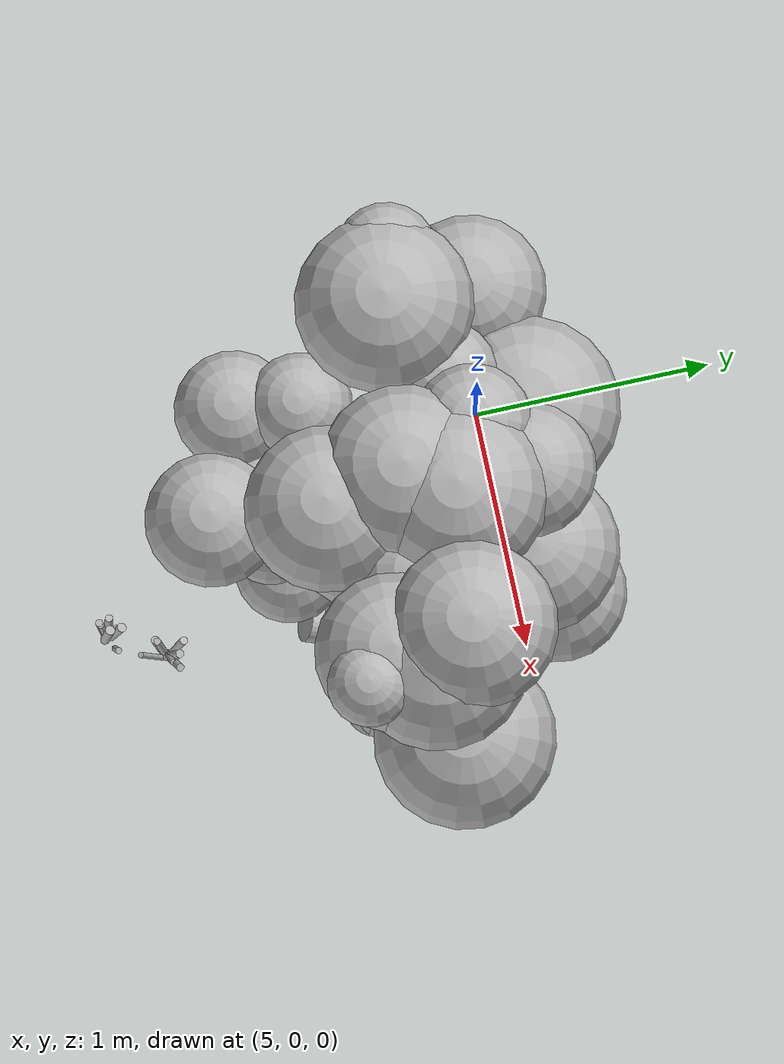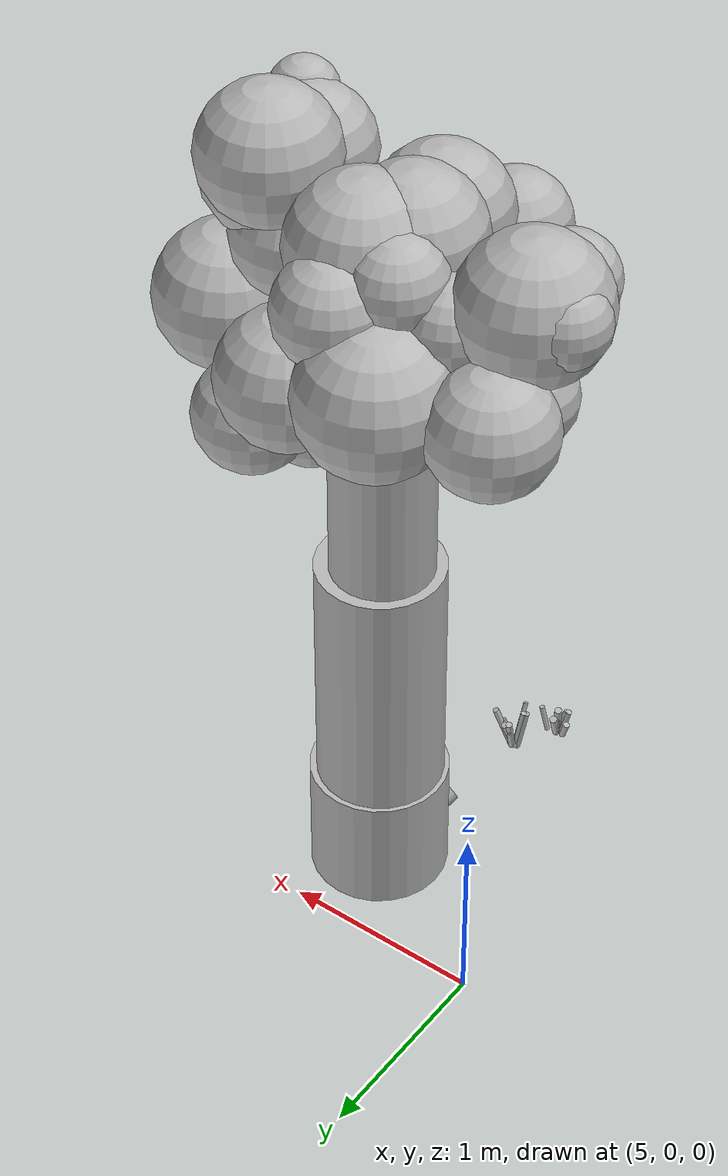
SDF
<sdf version="1.6">
 <world name="default">
  <model name="tree_0">
   <static>true</static>
   <pose>5.8540 -0.4740 0 0 0 0</pose>
   <link name="trunk">
    <pose>0 0 1.5000 0 0 0</pose>
    <collision name="trunk_c">
     <geometry><cylinder><radius>0.3500</radius><length>3.0000</length></cylinder></geometry>
    </collision>
   </link>
   <link name="trunk_v0">
    <pose>-0.0012 0.0004 0.3100 0 0 0</pose>
    <visual name="trunk_v0_v">
     <geometry><cylinder><radius>0.3448</radius><length>0.6448</length></cylinder></geometry>
     <material>
      <script>
       <uri>model://bushfire/materials/scripts</uri>
       <uri>model://bushfire/materials/textures</uri>
       <name>Bushfire/CharBark</name>
      </script>
     </material>
    </visual>
   </link>
   <link name="trunk_v1">
    <pose>-0.0084 0.0025 1.2700 0 0 0</pose>
    <visual name="trunk_v1_v">
     <geometry><cylinder><radius>0.3150</radius><length>1.3520</length></cylinder></geometry>
     <material>
      <script>
       <uri>model://bushfire/materials/scripts</uri>
       <uri>model://bushfire/materials/textures</uri>
       <name>Bushfire/BarkStringy</name>
      </script>
     </material>
    </visual>
   </link>
   <link name="trunk_v2">
    <pose>-0.0212 0.0064 2.4600 0 0 0</pose>
    <visual name="trunk_v2_v">
     <geometry><cylinder><radius>0.2520</radius><length>1.1232</length></cylinder></geometry>
     <material>
      <script>
       <uri>model://bushfire/materials/scripts</uri>
       <uri>model://bushfire/materials/textures</uri>
       <name>Bushfire/BarkStringy</name>
      </script>
     </material>
    </visual>
   </link>
   <link name="root0">
    <pose>0.1943 -0.1408 0.09 0 1.150 5.656</pose>
    <visual name="root0_v">
     <geometry><cylinder><radius>0.0771</radius><length>0.4200</length></cylinder></geometry>
     <material>
      <script>
       <uri>model://bushfire/materials/scripts</uri>
       <uri>model://bushfire/materials/textures</uri>
       <name>Bushfire/CharBark</name>
      </script>
     </material>
    </visual>
   </link>
   <link name="root1">
    <pose>-0.0689 -0.2299 0.09 0 1.150 4.421</pose>
    <visual name="root1_v">
     <geometry><cylinder><radius>0.0788</radius><length>0.4200</length></cylinder></geometry>
     <material>
      <script>
       <uri>model://bushfire/materials/scripts</uri>
       <uri>model://bushfire/materials/textures</uri>
       <name>Bushfire/CharBark</name>
      </script>
     </material>
    </visual>
   </link>
   <link name="root2">
    <pose>0.2066 -0.1222 0.09 0 1.150 5.749</pose>
    <visual name="root2_v">
     <geometry><cylinder><radius>0.0656</radius><length>0.4200</length></cylinder></geometry>
     <material>
      <script>
       <uri>model://bushfire/materials/scripts</uri>
       <uri>model://bushfire/materials/textures</uri>
       <name>Bushfire/CharBark</name>
      </script>
     </material>
    </visual>
   </link>
   <link name="branch0">
    <pose>-0.3504 0.1751 3.0342 0 1.0057 2.6781</pose>
    <visual name="branch0_v">
     <geometry><cylinder><radius>0.0425</radius><length>0.9277</length></cylinder></geometry>
     <material>
      <script>
       <uri>model://bushfire/materials/scripts</uri>
       <uri>model://bushfire/materials/textures</uri>
       <name>Bushfire/BarkStringy</name>
      </script>
     </material>
    </visual>
   </link>
   <link name="branch1">
    <pose>-0.2556 -0.1531 2.8833 0 1.0146 3.6811</pose>
    <visual name="branch1_v">
     <geometry><cylinder><radius>0.0318</radius><length>0.7017</length></cylinder></geometry>
     <material>
      <script>
       <uri>model://bushfire/materials/scripts</uri>
       <uri>model://bushfire/materials/textures</uri>
       <name>Bushfire/BarkStringy</name>
      </script>
     </material>
    </visual>
   </link>
   <link name="branch2">
    <pose>0.0164 -0.2365 2.6765 0 0.8127 4.7815</pose>
    <visual name="branch2_v">
     <geometry><cylinder><radius>0.0383</radius><length>0.6529</length></cylinder></geometry>
     <material>
      <script>
       <uri>model://bushfire/materials/scripts</uri>
       <uri>model://bushfire/materials/textures</uri>
       <name>Bushfire/BarkStringy</name>
      </script>
     </material>
    </visual>
   </link>
   <link name="branch3">
    <pose>0.2578 0.0353 2.9705 0 0.7895 6.4193</pose>
    <visual name="branch3_v">
     <geometry><cylinder><radius>0.0435</radius><length>0.7331</length></cylinder></geometry>
     <material>
      <script>
       <uri>model://bushfire/materials/scripts</uri>
       <uri>model://bushfire/materials/textures</uri>
       <name>Bushfire/BarkStringy</name>
      </script>
     </material>
    </visual>
   </link>
   <link name="branch4">
    <pose>0.1753 0.2175 2.8201 0 0.9769 7.1756</pose>
    <visual name="branch4_v">
     <geometry><cylinder><radius>0.0306</radius><length>0.6741</length></cylinder></geometry>
     <material>
      <script>
       <uri>model://bushfire/materials/scripts</uri>
       <uri>model://bushfire/materials/textures</uri>
       <name>Bushfire/BarkStringy</name>
      </script>
     </material>
    </visual>
   </link>
   <link name="branch5">
    <pose>-0.1718 0.2142 2.7830 0 0.6907 8.5299</pose>
    <visual name="branch5_v">
     <geometry><cylinder><radius>0.0422</radius><length>0.8620</length></cylinder></geometry>
     <material>
      <script>
       <uri>model://bushfire/materials/scripts</uri>
       <uri>model://bushfire/materials/textures</uri>
       <name>Bushfire/BarkStringy</name>
      </script>
     </material>
    </visual>
   </link>
   <link name="foliage0">
    <pose>-0.8416 0.0949 3.8422 0 0 0</pose>
    <visual name="foliage0_v">
     <geometry><sphere><radius>0.3443</radius></sphere></geometry>
     <material>
      <script>
       <uri>model://bushfire/materials/scripts</uri>
       <uri>model://bushfire/materials/textures</uri>
       <name>Bushfire/Foliage1</name>
      </script>
     </material>
    </visual>
   </link>
   <link name="foliage1">
    <pose>-0.5636 -0.2970 3.6007 0 0 0</pose>
    <visual name="foliage1_v">
     <geometry><sphere><radius>0.2027</radius></sphere></geometry>
     <material>
      <script>
       <uri>model://bushfire/materials/scripts</uri>
       <uri>model://bushfire/materials/textures</uri>
       <name>Bushfire/Foliage0</name>
      </script>
     </material>
    </visual>
   </link>
   <link name="foliage2">
    <pose>-0.0430 -0.4567 2.9053 0 0 0</pose>
    <visual name="foliage2_v">
     <geometry><sphere><radius>0.2169</radius></sphere></geometry>
     <material>
      <script>
       <uri>model://bushfire/materials/scripts</uri>
       <uri>model://bushfire/materials/textures</uri>
       <name>Bushfire/Foliage1</name>
      </script>
     </material>
    </visual>
   </link>
   <link name="foliage3">
    <pose>0.5952 -0.2678 4.1278 0 0 0</pose>
    <visual name="foliage3_v">
     <geometry><sphere><radius>0.1624</radius></sphere></geometry>
     <material>
      <script>
       <uri>model://bushfire/materials/scripts</uri>
       <uri>model://bushfire/materials/textures</uri>
       <name>Bushfire/Foliage0</name>
      </script>
     </material>
    </visual>
   </link>
   <link name="foliage4">
    <pose>0.1309 0.4761 3.2742 0 0 0</pose>
    <visual name="foliage4_v">
     <geometry><sphere><radius>0.3281</radius></sphere></geometry>
     <material>
      <script>
       <uri>model://bushfire/materials/scripts</uri>
       <uri>model://bushfire/materials/textures</uri>
       <name>Bushfire/Foliage2</name>
      </script>
     </material>
    </visual>
   </link>
   <link name="foliage5">
    <pose>-0.3848 0.5540 3.4548 0 0 0</pose>
    <visual name="foliage5_v">
     <geometry><sphere><radius>0.3608</radius></sphere></geometry>
     <material>
      <script>
       <uri>model://bushfire/materials/scripts</uri>
       <uri>model://bushfire/materials/textures</uri>
       <name>Bushfire/Foliage0</name>
      </script>
     </material>
    </visual>
   </link>
   <link name="foliage6">
    <pose>-0.8804 0.4378 3.4405 0 0 0</pose>
    <visual name="foliage6_v">
     <geometry><sphere><radius>0.2951</radius></sphere></geometry>
     <material>
      <script>
       <uri>model://bushfire/materials/scripts</uri>
       <uri>model://bushfire/materials/textures</uri>
       <name>Bushfire/Foliage1</name>
      </script>
     </material>
    </visual>
   </link>
   <link name="foliage7">
    <pose>-0.1069 -0.5097 3.4106 0 0 0</pose>
    <visual name="foliage7_v">
     <geometry><sphere><radius>0.1779</radius></sphere></geometry>
     <material>
      <script>
       <uri>model://bushfire/materials/scripts</uri>
       <uri>model://bushfire/materials/textures</uri>
       <name>Bushfire/Foliage0</name>
      </script>
     </material>
    </visual>
   </link>
   <link name="foliage8">
    <pose>-0.1264 -0.2784 3.8040 0 0 0</pose>
    <visual name="foliage8_v">
     <geometry><sphere><radius>0.3207</radius></sphere></geometry>
     <material>
      <script>
       <uri>model://bushfire/materials/scripts</uri>
       <uri>model://bushfire/materials/textures</uri>
       <name>Bushfire/Foliage0</name>
      </script>
     </material>
    </visual>
   </link>
   <link name="foliage9">
    <pose>0.4567 0.1559 4.1046 0 0 0</pose>
    <visual name="foliage9_v">
     <geometry><sphere><radius>0.3230</radius></sphere></geometry>
     <material>
      <script>
       <uri>model://bushfire/materials/scripts</uri>
       <uri>model://bushfire/materials/textures</uri>
       <name>Bushfire/Foliage2</name>
      </script>
     </material>
    </visual>
   </link>
   <link name="foliage10">
    <pose>0.3962 0.0524 3.6691 0 0 0</pose>
    <visual name="foliage10_v">
     <geometry><sphere><radius>0.3029</radius></sphere></geometry>
     <material>
      <script>
       <uri>model://bushfire/materials/scripts</uri>
       <uri>model://bushfire/materials/textures</uri>
       <name>Bushfire/Foliage2</name>
      </script>
     </material>
    </visual>
   </link>
   <link name="foliage11">
    <pose>-0.5422 0.2493 3.7143 0 0 0</pose>
    <visual name="foliage11_v">
     <geometry><sphere><radius>0.2233</radius></sphere></geometry>
     <material>
      <script>
       <uri>model://bushfire/materials/scripts</uri>
       <uri>model://bushfire/materials/textures</uri>
       <name>Bushfire/Foliage2</name>
      </script>
     </material>
    </visual>
   </link>
   <link name="foliage12">
    <pose>-0.1950 0.0346 3.8844 0 0 0</pose>
    <visual name="foliage12_v">
     <geometry><sphere><radius>0.3320</radius></sphere></geometry>
     <material>
      <script>
       <uri>model://bushfire/materials/scripts</uri>
       <uri>model://bushfire/materials/textures</uri>
       <name>Bushfire/Foliage0</name>
      </script>
     </material>
    </visual>
   </link>
   <link name="foliage13">
    <pose>0.0861 0.0266 3.4092 0 0 0</pose>
    <visual name="foliage13_v">
     <geometry><sphere><radius>0.1766</radius></sphere></geometry>
     <material>
      <script>
       <uri>model://bushfire/materials/scripts</uri>
       <uri>model://bushfire/materials/textures</uri>
       <name>Bushfire/Foliage2</name>
      </script>
     </material>
    </visual>
   </link>
   <link name="foliage14">
    <pose>-0.2997 -0.4820 3.2937 0 0 0</pose>
    <visual name="foliage14_v">
     <geometry><sphere><radius>0.2896</radius></sphere></geometry>
     <material>
      <script>
       <uri>model://bushfire/materials/scripts</uri>
       <uri>model://bushfire/materials/textures</uri>
       <name>Bushfire/Foliage1</name>
      </script>
     </material>
    </visual>
   </link>
   <link name="foliage15">
    <pose>0.4788 -0.1492 3.9561 0 0 0</pose>
    <visual name="foliage15_v">
     <geometry><sphere><radius>0.3046</radius></sphere></geometry>
     <material>
      <script>
       <uri>model://bushfire/materials/scripts</uri>
       <uri>model://bushfire/materials/textures</uri>
       <name>Bushfire/Foliage2</name>
      </script>
     </material>
    </visual>
   </link>
   <link name="foliage16">
    <pose>0.1376 0.3131 2.9619 0 0 0</pose>
    <visual name="foliage16_v">
     <geometry><sphere><radius>0.2329</radius></sphere></geometry>
     <material>
      <script>
       <uri>model://bushfire/materials/scripts</uri>
       <uri>model://bushfire/materials/textures</uri>
       <name>Bushfire/Foliage1</name>
      </script>
     </material>
    </visual>
   </link>
   <link name="foliage17">
    <pose>-0.0742 0.2170 3.8823 0 0 0</pose>
    <visual name="foliage17_v">
     <geometry><sphere><radius>0.3452</radius></sphere></geometry>
     <material>
      <script>
       <uri>model://bushfire/materials/scripts</uri>
       <uri>model://bushfire/materials/textures</uri>
       <name>Bushfire/Foliage1</name>
      </script>
     </material>
    </visual>
   </link>
   <link name="foliage18">
    <pose>-0.8502 0.1602 3.4344 0 0 0</pose>
    <visual name="foliage18_v">
     <geometry><sphere><radius>0.2396</radius></sphere></geometry>
     <material>
      <script>
       <uri>model://bushfire/materials/scripts</uri>
       <uri>model://bushfire/materials/textures</uri>
       <name>Bushfire/Foliage0</name>
      </script>
     </material>
    </visual>
   </link>
   <link name="foliage19">
    <pose>-0.0155 -0.2072 3.4936 0 0 0</pose>
    <visual name="foliage19_v">
     <geometry><sphere><radius>0.1561</radius></sphere></geometry>
     <material>
      <script>
       <uri>model://bushfire/materials/scripts</uri>
       <uri>model://bushfire/materials/textures</uri>
       <name>Bushfire/Foliage2</name>
      </script>
     </material>
    </visual>
   </link>
   <link name="foliage20">
    <pose>-0.2115 -0.7148 3.5279 0 0 0</pose>
    <visual name="foliage20_v">
     <geometry><sphere><radius>0.2602</radius></sphere></geometry>
     <material>
      <script>
       <uri>model://bushfire/materials/scripts</uri>
       <uri>model://bushfire/materials/textures</uri>
       <name>Bushfire/Foliage2</name>
      </script>
     </material>
    </visual>
   </link>
   <link name="foliage21">
    <pose>0.7785 0.0601 3.1798 0 0 0</pose>
    <visual name="foliage21_v">
     <geometry><sphere><radius>0.3537</radius></sphere></geometry>
     <material>
      <script>
       <uri>model://bushfire/materials/scripts</uri>
       <uri>model://bushfire/materials/textures</uri>
       <name>Bushfire/Foliage0</name>
      </script>
     </material>
    </visual>
   </link>
   <link name="foliage22">
    <pose>0.2883 0.5332 3.0430 0 0 0</pose>
    <visual name="foliage22_v">
     <geometry><sphere><radius>0.2699</radius></sphere></geometry>
     <material>
      <script>
       <uri>model://bushfire/materials/scripts</uri>
       <uri>model://bushfire/materials/textures</uri>
       <name>Bushfire/Foliage2</name>
      </script>
     </material>
    </visual>
   </link>
   <link name="foliage23">
    <pose>-0.3213 0.3234 3.8712 0 0 0</pose>
    <visual name="foliage23_v">
     <geometry><sphere><radius>0.2309</radius></sphere></geometry>
     <material>
      <script>
       <uri>model://bushfire/materials/scripts</uri>
       <uri>model://bushfire/materials/textures</uri>
       <name>Bushfire/Foliage2</name>
      </script>
     </material>
    </visual>
   </link>
   <link name="foliage24">
    <pose>-0.1193 0.4974 3.7500 0 0 0</pose>
    <visual name="foliage24_v">
     <geometry><sphere><radius>0.2618</radius></sphere></geometry>
     <material>
      <script>
       <uri>model://bushfire/materials/scripts</uri>
       <uri>model://bushfire/materials/textures</uri>
       <name>Bushfire/Foliage0</name>
      </script>
     </material>
    </visual>
   </link>
   <link name="foliage25">
    <pose>-0.6120 -0.5460 3.4991 0 0 0</pose>
    <visual name="foliage25_v">
     <geometry><sphere><radius>0.2300</radius></sphere></geometry>
     <material>
      <script>
       <uri>model://bushfire/materials/scripts</uri>
       <uri>model://bushfire/materials/textures</uri>
       <name>Bushfire/Foliage0</name>
      </script>
     </material>
    </visual>
   </link>
   <link name="foliage26">
    <pose>-0.0423 -0.1612 3.2814 0 0 0</pose>
    <visual name="foliage26_v">
     <geometry><sphere><radius>0.2702</radius></sphere></geometry>
     <material>
      <script>
       <uri>model://bushfire/materials/scripts</uri>
       <uri>model://bushfire/materials/textures</uri>
       <name>Bushfire/Foliage2</name>
      </script>
     </material>
    </visual>
   </link>
   <link name="foliage27">
    <pose>0.5380 0.0056 3.9370 0 0 0</pose>
    <visual name="foliage27_v">
     <geometry><sphere><radius>0.3475</radius></sphere></geometry>
     <material>
      <script>
       <uri>model://bushfire/materials/scripts</uri>
       <uri>model://bushfire/materials/textures</uri>
       <name>Bushfire/Foliage1</name>
      </script>
     </material>
    </visual>
   </link>
   <link name="foliage28">
    <pose>0.1790 -0.0089 3.7334 0 0 0</pose>
    <visual name="foliage28_v">
     <geometry><sphere><radius>0.2423</radius></sphere></geometry>
     <material>
      <script>
       <uri>model://bushfire/materials/scripts</uri>
       <uri>model://bushfire/materials/textures</uri>
       <name>Bushfire/Foliage1</name>
      </script>
     </material>
    </visual>
   </link>
   <link name="foliage29">
    <pose>-0.5346 0.2800 3.2510 0 0 0</pose>
    <visual name="foliage29_v">
     <geometry><sphere><radius>0.1549</radius></sphere></geometry>
     <material>
      <script>
       <uri>model://bushfire/materials/scripts</uri>
       <uri>model://bushfire/materials/textures</uri>
       <name>Bushfire/Foliage2</name>
      </script>
     </material>
    </visual>
   </link>
   <link name="foliage30">
    <pose>-1.0244 0.1419 3.8708 0 0 0</pose>
    <visual name="foliage30_v">
     <geometry><sphere><radius>0.1977</radius></sphere></geometry>
     <material>
      <script>
       <uri>model://bushfire/materials/scripts</uri>
       <uri>model://bushfire/materials/textures</uri>
       <name>Bushfire/Foliage1</name>
      </script>
     </material>
    </visual>
   </link>
  </model>
  <model name="tussocks">
   <static>true</static>
   <link name="tuft0_0">
    <pose>5.5595 -1.7252 0.0705 0 0.2120 3.4527</pose>
    <visual name="tuft0_0_v">
     <geometry><cylinder><radius>0.0159</radius><length>0.1532</length></cylinder></geometry>
     <material>
      <script>
       <uri>model://bushfire/materials/scripts</uri>
       <uri>model://bushfire/materials/textures</uri>
       <name>Bushfire/Tussock</name>
      </script>
     </material>
    </visual>
   </link>
   <link name="tuft0_1">
    <pose>5.5793 -1.7187 0.0721 0 0.3195 3.4480</pose>
    <visual name="tuft0_1_v">
     <geometry><cylinder><radius>0.0131</radius><length>0.1567</length></cylinder></geometry>
     <material>
      <script>
       <uri>model://bushfire/materials/scripts</uri>
       <uri>model://bushfire/materials/textures</uri>
       <name>Bushfire/Tussock</name>
      </script>
     </material>
    </visual>
   </link>
   <link name="tuft0_2">
    <pose>5.5415 -1.6922 0.0465 0 0.3152 2.7767</pose>
    <visual name="tuft0_2_v">
     <geometry><cylinder><radius>0.0167</radius><length>0.1012</length></cylinder></geometry>
     <material>
      <script>
       <uri>model://bushfire/materials/scripts</uri>
       <uri>model://bushfire/materials/textures</uri>
       <name>Bushfire/Tussock</name>
      </script>
     </material>
    </visual>
   </link>
   <link name="tuft0_3">
    <pose>5.5934 -1.7067 0.0787 0 0.2024 2.0283</pose>
    <visual name="tuft0_3_v">
     <geometry><cylinder><radius>0.0199</radius><length>0.1710</length></cylinder></geometry>
     <material>
      <script>
       <uri>model://bushfire/materials/scripts</uri>
       <uri>model://bushfire/materials/textures</uri>
       <name>Bushfire/Foliage2</name>
      </script>
     </material>
    </visual>
   </link>
   <link name="tuft0_4">
    <pose>5.5876 -1.6685 0.0693 0 0.3694 1.7695</pose>
    <visual name="tuft0_4_v">
     <geometry><cylinder><radius>0.0198</radius><length>0.1507</length></cylinder></geometry>
     <material>
      <script>
       <uri>model://bushfire/materials/scripts</uri>
       <uri>model://bushfire/materials/textures</uri>
       <name>Bushfire/Foliage2</name>
      </script>
     </material>
    </visual>
   </link>
   <link name="tuft0_5">
    <pose>5.5797 -1.6776 0.0547 0 0.2161 2.0137</pose>
    <visual name="tuft0_5_v">
     <geometry><cylinder><radius>0.0113</radius><length>0.1189</length></cylinder></geometry>
     <material>
      <script>
       <uri>model://bushfire/materials/scripts</uri>
       <uri>model://bushfire/materials/textures</uri>
       <name>Bushfire/Tussock</name>
      </script>
     </material>
    </visual>
   </link>
   <link name="tuft0_7">
    <pose>5.6604 -1.6820 0.0726 0 0.2154 0.4550</pose>
    <visual name="tuft0_7_v">
     <geometry><cylinder><radius>0.0131</radius><length>0.1578</length></cylinder></geometry>
     <material>
      <script>
       <uri>model://bushfire/materials/scripts</uri>
       <uri>model://bushfire/materials/textures</uri>
       <name>Bushfire/Foliage2</name>
      </script>
     </material>
    </visual>
   </link>
   <link name="tuft153_0">
    <pose>5.7168 -1.4456 0.0822 0 0.4029 1.9066</pose>
    <visual name="tuft153_0_v">
     <geometry><cylinder><radius>0.0112</radius><length>0.1787</length></cylinder></geometry>
     <material>
      <script>
       <uri>model://bushfire/materials/scripts</uri>
       <uri>model://bushfire/materials/textures</uri>
       <name>Bushfire/Tussock</name>
      </script>
     </material>
    </visual>
   </link>
   <link name="tuft153_1">
    <pose>5.7675 -1.4563 0.1193 0 0.3613 0.4387</pose>
    <visual name="tuft153_1_v">
     <geometry><cylinder><radius>0.0164</radius><length>0.2593</length></cylinder></geometry>
     <material>
      <script>
       <uri>model://bushfire/materials/scripts</uri>
       <uri>model://bushfire/materials/textures</uri>
       <name>Bushfire/Foliage2</name>
      </script>
     </material>
    </visual>
   </link>
   <link name="tuft153_2">
    <pose>5.6891 -1.5038 0.1101 0 0.1721 3.7850</pose>
    <visual name="tuft153_2_v">
     <geometry><cylinder><radius>0.0172</radius><length>0.2393</length></cylinder></geometry>
     <material>
      <script>
       <uri>model://bushfire/materials/scripts</uri>
       <uri>model://bushfire/materials/textures</uri>
       <name>Bushfire/Foliage2</name>
      </script>
     </material>
    </visual>
   </link>
   <link name="tuft153_3">
    <pose>5.7405 -1.4712 0.0855 0 0.3914 0.2962</pose>
    <visual name="tuft153_3_v">
     <geometry><cylinder><radius>0.0135</radius><length>0.1859</length></cylinder></geometry>
     <material>
      <script>
       <uri>model://bushfire/materials/scripts</uri>
       <uri>model://bushfire/materials/textures</uri>
       <name>Bushfire/Tussock</name>
      </script>
     </material>
    </visual>
   </link>
   <link name="tuft153_4">
    <pose>5.6968 -1.4976 0.1114 0 0.1548 3.7756</pose>
    <visual name="tuft153_4_v">
     <geometry><cylinder><radius>0.0152</radius><length>0.2421</length></cylinder></geometry>
     <material>
      <script>
       <uri>model://bushfire/materials/scripts</uri>
       <uri>model://bushfire/materials/textures</uri>
       <name>Bushfire/Tussock</name>
      </script>
     </material>
    </visual>
   </link>
   <link name="tuft153_5">
    <pose>5.7234 -1.5443 0.1110 0 0.3643 4.6572</pose>
    <visual name="tuft153_5_v">
     <geometry><cylinder><radius>0.0120</radius><length>0.2413</length></cylinder></geometry>
     <material>
      <script>
       <uri>model://bushfire/materials/scripts</uri>
       <uri>model://bushfire/materials/textures</uri>
       <name>Bushfire/Tussock</name>
      </script>
     </material>
    </visual>
   </link>
   <link name="tuft153_6">
    <pose>5.7140 -1.4380 0.1114 0 0.3466 1.9097</pose>
    <visual name="tuft153_6_v">
     <geometry><cylinder><radius>0.0168</radius><length>0.2422</length></cylinder></geometry>
     <material>
      <script>
       <uri>model://bushfire/materials/scripts</uri>
       <uri>model://bushfire/materials/textures</uri>
       <name>Bushfire/Tussock</name>
      </script>
     </material>
    </visual>
   </link>
   <link name="tuft153_7">
    <pose>5.7372 -1.4637 0.0661 0 0.3883 0.8549</pose>
    <visual name="tuft153_7_v">
     <geometry><cylinder><radius>0.0113</radius><length>0.1438</length></cylinder></geometry>
     <material>
      <script>
       <uri>model://bushfire/materials/scripts</uri>
       <uri>model://bushfire/materials/textures</uri>
       <name>Bushfire/Tussock</name>
      </script>
     </material>
    </visual>
   </link>
   <link name="tuft153_8">
    <pose>5.7336 -1.4577 0.0860 0 0.3569 1.2182</pose>
    <visual name="tuft153_8_v">
     <geometry><cylinder><radius>0.0180</radius><length>0.1870</length></cylinder></geometry>
     <material>
      <script>
       <uri>model://bushfire/materials/scripts</uri>
       <uri>model://bushfire/materials/textures</uri>
       <name>Bushfire/Tussock</name>
      </script>
     </material>
    </visual>
   </link>
  </model>
 </world>
</sdf>
